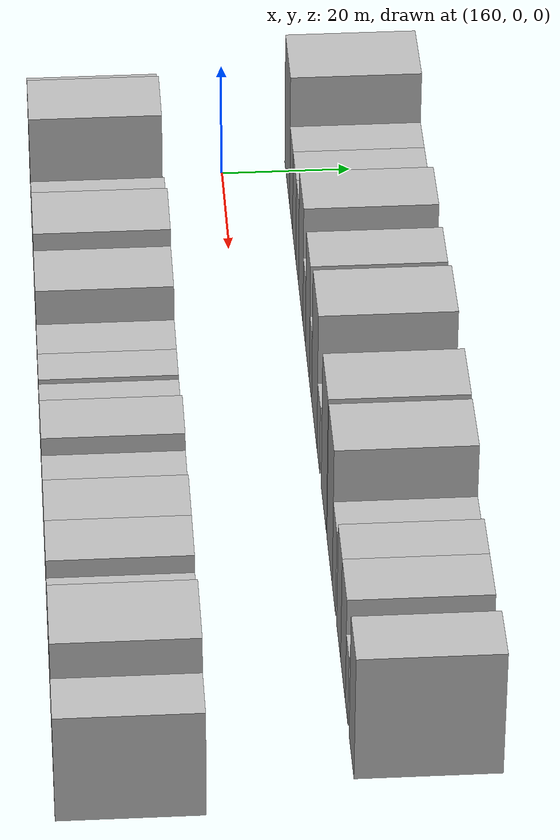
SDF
<sdf version="1.6">
 <world name="default">
  <model name="building_17">
   <static>1</static>
   <pose>163.5873 20.0000 0 0.000000 0.000000 1.570796</pose>
   <link name="link">
    <pose>0 0 12.00 0 0 0</pose>
    <collision name="collision"><geometry><box><size>20.0000 11.8232 24.0000</size></box></geometry></collision>
    <visual name="visual">
     <cast_shadows>0</cast_shadows>
     <geometry><box><size>20.0000 11.8232 24.0000</size></box></geometry>
     <material>
      <script>
       <uri>model://HANNAS_wall/materials/scripts</uri>
       <uri>model://HANNAS_wall/materials/textures</uri>
       <name>vrc/HANNAS_wall</name>
      </script>
     </material>
    </visual>
   </link>
  </model>
  <model name="building_18">
   <static>1</static>
   <pose>172.8582 20.0000 0 0.000000 0.000000 1.570796</pose>
   <link name="link">
    <pose>0 0 7.50 0 0 0</pose>
    <collision name="collision"><geometry><box><size>20.0000 6.7187 15.0000</size></box></geometry></collision>
    <visual name="visual">
     <cast_shadows>0</cast_shadows>
     <geometry><box><size>20.0000 6.7187 15.0000</size></box></geometry>
     <material>
      <script>
       <uri>model://HANNAS_wall/materials/scripts</uri>
       <uri>model://HANNAS_wall/materials/textures</uri>
       <name>vrc/HANNAS_wall</name>
      </script>
     </material>
    </visual>
   </link>
  </model>
  <model name="building_19">
   <static>1</static>
   <pose>179.9510 20.0000 0 0.000000 0.000000 1.570796</pose>
   <link name="link">
    <pose>0 0 7.50 0 0 0</pose>
    <collision name="collision"><geometry><box><size>20.0000 7.4668 15.0000</size></box></geometry></collision>
    <visual name="visual">
     <cast_shadows>0</cast_shadows>
     <geometry><box><size>20.0000 7.4668 15.0000</size></box></geometry>
     <material>
      <script>
       <uri>model://HANNAS_wall/materials/scripts</uri>
       <uri>model://HANNAS_wall/materials/textures</uri>
       <name>vrc/HANNAS_wall</name>
      </script>
     </material>
    </visual>
   </link>
  </model>
  <model name="building_20">
   <static>1</static>
   <pose>186.8059 20.0000 0 0.000000 0.000000 1.570796</pose>
   <link name="link">
    <pose>0 0 7.50 0 0 0</pose>
    <collision name="collision"><geometry><box><size>20.0000 6.2430 15.0000</size></box></geometry></collision>
    <visual name="visual">
     <cast_shadows>0</cast_shadows>
     <geometry><box><size>20.0000 6.2430 15.0000</size></box></geometry>
     <material>
      <script>
       <uri>model://HANNAS_wall/materials/scripts</uri>
       <uri>model://HANNAS_wall/materials/textures</uri>
       <name>vrc/HANNAS_wall</name>
      </script>
     </material>
    </visual>
   </link>
  </model>
  <model name="building_21">
   <static>1</static>
   <pose>194.7337 20.0000 0 0.000000 0.000000 1.570796</pose>
   <link name="link">
    <pose>0 0 10.50 0 0 0</pose>
    <collision name="collision"><geometry><box><size>20.0000 9.6127 21.0000</size></box></geometry></collision>
    <visual name="visual">
     <cast_shadows>0</cast_shadows>
     <geometry><box><size>20.0000 9.6127 21.0000</size></box></geometry>
     <material>
      <script>
       <uri>model://HANNAS_wall/materials/scripts</uri>
       <uri>model://HANNAS_wall/materials/textures</uri>
       <name>vrc/HANNAS_wall</name>
      </script>
     </material>
    </visual>
   </link>
  </model>
  <model name="building_22">
   <static>1</static>
   <pose>202.4195 20.0000 0 0.000000 0.000000 1.570796</pose>
   <link name="link">
    <pose>0 0 6.00 0 0 0</pose>
    <collision name="collision"><geometry><box><size>20.0000 5.7590 12.0000</size></box></geometry></collision>
    <visual name="visual">
     <cast_shadows>0</cast_shadows>
     <geometry><box><size>20.0000 5.7590 12.0000</size></box></geometry>
     <material>
      <script>
       <uri>model://HANNAS_wall/materials/scripts</uri>
       <uri>model://HANNAS_wall/materials/textures</uri>
       <name>vrc/HANNAS_wall</name>
      </script>
     </material>
    </visual>
   </link>
  </model>
  <model name="building_23">
   <static>1</static>
   <pose>209.6194 20.0000 0 0.000000 0.000000 1.570796</pose>
   <link name="link">
    <pose>0 0 10.50 0 0 0</pose>
    <collision name="collision"><geometry><box><size>20.0000 8.6408 21.0000</size></box></geometry></collision>
    <visual name="visual">
     <cast_shadows>0</cast_shadows>
     <geometry><box><size>20.0000 8.6408 21.0000</size></box></geometry>
     <material>
      <script>
       <uri>model://HANNAS_wall/materials/scripts</uri>
       <uri>model://HANNAS_wall/materials/textures</uri>
       <name>vrc/HANNAS_wall</name>
      </script>
     </material>
    </visual>
   </link>
  </model>
  <model name="building_24">
   <static>1</static>
   <pose>216.3838 20.0000 0 0.000000 0.000000 1.570796</pose>
   <link name="link">
    <pose>0 0 6.00 0 0 0</pose>
    <collision name="collision"><geometry><box><size>20.0000 4.8879 12.0000</size></box></geometry></collision>
    <visual name="visual">
     <cast_shadows>0</cast_shadows>
     <geometry><box><size>20.0000 4.8879 12.0000</size></box></geometry>
     <material>
      <script>
       <uri>model://HANNAS_wall/materials/scripts</uri>
       <uri>model://HANNAS_wall/materials/textures</uri>
       <name>vrc/HANNAS_wall</name>
      </script>
     </material>
    </visual>
   </link>
  </model>
  <model name="building_25">
   <static>1</static>
   <pose>224.3816 20.0000 0 0.000000 0.000000 1.570796</pose>
   <link name="link">
    <pose>0 0 12.00 0 0 0</pose>
    <collision name="collision"><geometry><box><size>20.0000 11.1077 24.0000</size></box></geometry></collision>
    <visual name="visual">
     <cast_shadows>0</cast_shadows>
     <geometry><box><size>20.0000 11.1077 24.0000</size></box></geometry>
     <material>
      <script>
       <uri>model://HANNAS_wall/materials/scripts</uri>
       <uri>model://HANNAS_wall/materials/textures</uri>
       <name>vrc/HANNAS_wall</name>
      </script>
     </material>
    </visual>
   </link>
  </model>
  <model name="building_26">
   <static>1</static>
   <pose>232.8020 20.0000 0 0.000000 0.000000 1.570796</pose>
   <link name="link">
    <pose>0 0 6.00 0 0 0</pose>
    <collision name="collision"><geometry><box><size>20.0000 5.7331 12.0000</size></box></geometry></collision>
    <visual name="visual">
     <cast_shadows>0</cast_shadows>
     <geometry><box><size>20.0000 5.7331 12.0000</size></box></geometry>
     <material>
      <script>
       <uri>model://HANNAS_wall/materials/scripts</uri>
       <uri>model://HANNAS_wall/materials/textures</uri>
       <name>vrc/HANNAS_wall</name>
      </script>
     </material>
    </visual>
   </link>
  </model>
  <model name="building_27">
   <static>1</static>
   <pose>243.9484 20.0000 0 0.000000 0.000000 1.570796</pose>
   <link name="link">
    <pose>0 0 12.00 0 0 0</pose>
    <collision name="collision"><geometry><box><size>20.0000 10.5597 24.0000</size></box></geometry></collision>
    <visual name="visual">
     <cast_shadows>0</cast_shadows>
     <geometry><box><size>20.0000 10.5597 24.0000</size></box></geometry>
     <material>
      <script>
       <uri>model://HANNAS_wall/materials/scripts</uri>
       <uri>model://HANNAS_wall/materials/textures</uri>
       <name>vrc/HANNAS_wall</name>
      </script>
     </material>
    </visual>
   </link>
  </model>
  <model name="building_28">
   <static>1</static>
   <pose>255.4477 20.0000 0 0.000000 0.000000 1.570796</pose>
   <link name="link">
    <pose>0 0 12.00 0 0 0</pose>
    <collision name="collision"><geometry><box><size>20.0000 10.4390 24.0000</size></box></geometry></collision>
    <visual name="visual">
     <cast_shadows>0</cast_shadows>
     <geometry><box><size>20.0000 10.4390 24.0000</size></box></geometry>
     <material>
      <script>
       <uri>model://HANNAS_wall/materials/scripts</uri>
       <uri>model://HANNAS_wall/materials/textures</uri>
       <name>vrc/HANNAS_wall</name>
      </script>
     </material>
    </visual>
   </link>
  </model>
  <model name="building_29">
   <static>1</static>
   <pose>263.9485 20.0000 0 0.000000 0.000000 1.570796</pose>
   <link name="link">
    <pose>0 0 7.50 0 0 0</pose>
    <collision name="collision"><geometry><box><size>20.0000 6.5625 15.0000</size></box></geometry></collision>
    <visual name="visual">
     <cast_shadows>0</cast_shadows>
     <geometry><box><size>20.0000 6.5625 15.0000</size></box></geometry>
     <material>
      <script>
       <uri>model://HANNAS_wall/materials/scripts</uri>
       <uri>model://HANNAS_wall/materials/textures</uri>
       <name>vrc/HANNAS_wall</name>
      </script>
     </material>
    </visual>
   </link>
  </model>
  <model name="building_30">
   <static>1</static>
   <pose>272.9415 20.0000 0 0.000000 0.000000 1.570796</pose>
   <link name="link">
    <pose>0 0 9.00 0 0 0</pose>
    <collision name="collision"><geometry><box><size>20.0000 7.4235 18.0000</size></box></geometry></collision>
    <visual name="visual">
     <cast_shadows>0</cast_shadows>
     <geometry><box><size>20.0000 7.4235 18.0000</size></box></geometry>
     <material>
      <script>
       <uri>model://HANNAS_wall/materials/scripts</uri>
       <uri>model://HANNAS_wall/materials/textures</uri>
       <name>vrc/HANNAS_wall</name>
      </script>
     </material>
    </visual>
   </link>
  </model>
  <model name="building_31">
   <static>1</static>
   <pose>280.9500 20.0000 0 0.000000 0.000000 1.570796</pose>
   <link name="link">
    <pose>0 0 9.00 0 0 0</pose>
    <collision name="collision"><geometry><box><size>20.0000 8.5936 18.0000</size></box></geometry></collision>
    <visual name="visual">
     <cast_shadows>0</cast_shadows>
     <geometry><box><size>20.0000 8.5936 18.0000</size></box></geometry>
     <material>
      <script>
       <uri>model://HANNAS_wall/materials/scripts</uri>
       <uri>model://HANNAS_wall/materials/textures</uri>
       <name>vrc/HANNAS_wall</name>
      </script>
     </material>
    </visual>
   </link>
  </model>
  <model name="building_32">
   <static>1</static>
   <pose>287.6605 20.0000 0 0.000000 0.000000 1.570796</pose>
   <link name="link">
    <pose>0 0 6.00 0 0 0</pose>
    <collision name="collision"><geometry><box><size>20.0000 4.8273 12.0000</size></box></geometry></collision>
    <visual name="visual">
     <cast_shadows>0</cast_shadows>
     <geometry><box><size>20.0000 4.8273 12.0000</size></box></geometry>
     <material>
      <script>
       <uri>model://HANNAS_wall/materials/scripts</uri>
       <uri>model://HANNAS_wall/materials/textures</uri>
       <name>vrc/HANNAS_wall</name>
      </script>
     </material>
    </visual>
   </link>
  </model>
  <model name="building_33">
   <static>1</static>
   <pose>296.4525 20.0000 0 0.000000 0.000000 1.570796</pose>
   <link name="link">
    <pose>0 0 10.50 0 0 0</pose>
    <collision name="collision"><geometry><box><size>20.0000 8.7567 21.0000</size></box></geometry></collision>
    <visual name="visual">
     <cast_shadows>0</cast_shadows>
     <geometry><box><size>20.0000 8.7567 21.0000</size></box></geometry>
     <material>
      <script>
       <uri>model://HANNAS_wall/materials/scripts</uri>
       <uri>model://HANNAS_wall/materials/textures</uri>
       <name>vrc/HANNAS_wall</name>
      </script>
     </material>
    </visual>
   </link>
  </model>
  <model name="building_49">
   <static>1</static>
   <pose>162.0936 -20.0000 0 0.000000 0.000000 1.570796</pose>
   <link name="link">
    <pose>0 0 9.00 0 0 0</pose>
    <collision name="collision"><geometry><box><size>20.0000 7.4808 18.0000</size></box></geometry></collision>
    <visual name="visual">
     <cast_shadows>0</cast_shadows>
     <geometry><box><size>20.0000 7.4808 18.0000</size></box></geometry>
     <material>
      <script>
       <uri>model://HANNAS_wall/materials/scripts</uri>
       <uri>model://HANNAS_wall/materials/textures</uri>
       <name>vrc/HANNAS_wall</name>
      </script>
     </material>
    </visual>
   </link>
  </model>
  <model name="building_50">
   <static>1</static>
   <pose>173.1123 -20.0000 0 0.000000 0.000000 1.570796</pose>
   <link name="link">
    <pose>0 0 12.00 0 0 0</pose>
    <collision name="collision"><geometry><box><size>20.0000 10.5565 24.0000</size></box></geometry></collision>
    <visual name="visual">
     <cast_shadows>0</cast_shadows>
     <geometry><box><size>20.0000 10.5565 24.0000</size></box></geometry>
     <material>
      <script>
       <uri>model://HANNAS_wall/materials/scripts</uri>
       <uri>model://HANNAS_wall/materials/textures</uri>
       <name>vrc/HANNAS_wall</name>
      </script>
     </material>
    </visual>
   </link>
  </model>
  <model name="building_51">
   <static>1</static>
   <pose>181.2041 -20.0000 0 0.000000 0.000000 1.570796</pose>
   <link name="link">
    <pose>0 0 6.00 0 0 0</pose>
    <collision name="collision"><geometry><box><size>20.0000 5.6272 12.0000</size></box></geometry></collision>
    <visual name="visual">
     <cast_shadows>0</cast_shadows>
     <geometry><box><size>20.0000 5.6272 12.0000</size></box></geometry>
     <material>
      <script>
       <uri>model://HANNAS_wall/materials/scripts</uri>
       <uri>model://HANNAS_wall/materials/textures</uri>
       <name>vrc/HANNAS_wall</name>
      </script>
     </material>
    </visual>
   </link>
  </model>
  <model name="building_52">
   <static>1</static>
   <pose>190.1414 -20.0000 0 0.000000 0.000000 1.570796</pose>
   <link name="link">
    <pose>0 0 9.00 0 0 0</pose>
    <collision name="collision"><geometry><box><size>20.0000 8.2473 18.0000</size></box></geometry></collision>
    <visual name="visual">
     <cast_shadows>0</cast_shadows>
     <geometry><box><size>20.0000 8.2473 18.0000</size></box></geometry>
     <material>
      <script>
       <uri>model://HANNAS_wall/materials/scripts</uri>
       <uri>model://HANNAS_wall/materials/textures</uri>
       <name>vrc/HANNAS_wall</name>
      </script>
     </material>
    </visual>
   </link>
  </model>
  <model name="building_53">
   <static>1</static>
   <pose>202.4718 -20.0000 0 0.000000 0.000000 1.570796</pose>
   <link name="link">
    <pose>0 0 12.00 0 0 0</pose>
    <collision name="collision"><geometry><box><size>20.0000 10.4137 24.0000</size></box></geometry></collision>
    <visual name="visual">
     <cast_shadows>0</cast_shadows>
     <geometry><box><size>20.0000 10.4137 24.0000</size></box></geometry>
     <material>
      <script>
       <uri>model://HANNAS_wall/materials/scripts</uri>
       <uri>model://HANNAS_wall/materials/textures</uri>
       <name>vrc/HANNAS_wall</name>
      </script>
     </material>
    </visual>
   </link>
  </model>
  <model name="building_54">
   <static>1</static>
   <pose>212.6439 -20.0000 0 0.000000 0.000000 1.570796</pose>
   <link name="link">
    <pose>0 0 10.50 0 0 0</pose>
    <collision name="collision"><geometry><box><size>20.0000 9.9305 21.0000</size></box></geometry></collision>
    <visual name="visual">
     <cast_shadows>0</cast_shadows>
     <geometry><box><size>20.0000 9.9305 21.0000</size></box></geometry>
     <material>
      <script>
       <uri>model://HANNAS_wall/materials/scripts</uri>
       <uri>model://HANNAS_wall/materials/textures</uri>
       <name>vrc/HANNAS_wall</name>
      </script>
     </material>
    </visual>
   </link>
  </model>
  <model name="building_55">
   <static>1</static>
   <pose>221.1147 -20.0000 0 0.000000 0.000000 1.570796</pose>
   <link name="link">
    <pose>0 0 7.50 0 0 0</pose>
    <collision name="collision"><geometry><box><size>20.0000 7.0110 15.0000</size></box></geometry></collision>
    <visual name="visual">
     <cast_shadows>0</cast_shadows>
     <geometry><box><size>20.0000 7.0110 15.0000</size></box></geometry>
     <material>
      <script>
       <uri>model://HANNAS_wall/materials/scripts</uri>
       <uri>model://HANNAS_wall/materials/textures</uri>
       <name>vrc/HANNAS_wall</name>
      </script>
     </material>
    </visual>
   </link>
  </model>
  <model name="building_56">
   <static>1</static>
   <pose>227.6785 -20.0000 0 0.000000 0.000000 1.570796</pose>
   <link name="link">
    <pose>0 0 7.50 0 0 0</pose>
    <collision name="collision"><geometry><box><size>20.0000 6.1165 15.0000</size></box></geometry></collision>
    <visual name="visual">
     <cast_shadows>0</cast_shadows>
     <geometry><box><size>20.0000 6.1165 15.0000</size></box></geometry>
     <material>
      <script>
       <uri>model://HANNAS_wall/materials/scripts</uri>
       <uri>model://HANNAS_wall/materials/textures</uri>
       <name>vrc/HANNAS_wall</name>
      </script>
     </material>
    </visual>
   </link>
  </model>
  <model name="building_57">
   <static>1</static>
   <pose>234.7398 -20.0000 0 0.000000 0.000000 1.570796</pose>
   <link name="link">
    <pose>0 0 7.50 0 0 0</pose>
    <collision name="collision"><geometry><box><size>20.0000 6.0059 15.0000</size></box></geometry></collision>
    <visual name="visual">
     <cast_shadows>0</cast_shadows>
     <geometry><box><size>20.0000 6.0059 15.0000</size></box></geometry>
     <material>
      <script>
       <uri>model://HANNAS_wall/materials/scripts</uri>
       <uri>model://HANNAS_wall/materials/textures</uri>
       <name>vrc/HANNAS_wall</name>
      </script>
     </material>
    </visual>
   </link>
  </model>
  <model name="building_58">
   <static>1</static>
   <pose>240.4771 -20.0000 0 0.000000 0.000000 1.570796</pose>
   <link name="link">
    <pose>0 0 6.00 0 0 0</pose>
    <collision name="collision"><geometry><box><size>20.0000 5.4688 12.0000</size></box></geometry></collision>
    <visual name="visual">
     <cast_shadows>0</cast_shadows>
     <geometry><box><size>20.0000 5.4688 12.0000</size></box></geometry>
     <material>
      <script>
       <uri>model://HANNAS_wall/materials/scripts</uri>
       <uri>model://HANNAS_wall/materials/textures</uri>
       <name>vrc/HANNAS_wall</name>
      </script>
     </material>
    </visual>
   </link>
  </model>
  <model name="building_59">
   <static>1</static>
   <pose>247.5259 -20.0000 0 0.000000 0.000000 1.570796</pose>
   <link name="link">
    <pose>0 0 10.50 0 0 0</pose>
    <collision name="collision"><geometry><box><size>20.0000 8.6287 21.0000</size></box></geometry></collision>
    <visual name="visual">
     <cast_shadows>0</cast_shadows>
     <geometry><box><size>20.0000 8.6287 21.0000</size></box></geometry>
     <material>
      <script>
       <uri>model://HANNAS_wall/materials/scripts</uri>
       <uri>model://HANNAS_wall/materials/textures</uri>
       <name>vrc/HANNAS_wall</name>
      </script>
     </material>
    </visual>
   </link>
  </model>
  <model name="building_60">
   <static>1</static>
   <pose>255.9013 -20.0000 0 0.000000 0.000000 1.570796</pose>
   <link name="link">
    <pose>0 0 9.00 0 0 0</pose>
    <collision name="collision"><geometry><box><size>20.0000 8.1222 18.0000</size></box></geometry></collision>
    <visual name="visual">
     <cast_shadows>0</cast_shadows>
     <geometry><box><size>20.0000 8.1222 18.0000</size></box></geometry>
     <material>
      <script>
       <uri>model://HANNAS_wall/materials/scripts</uri>
       <uri>model://HANNAS_wall/materials/textures</uri>
       <name>vrc/HANNAS_wall</name>
      </script>
     </material>
    </visual>
   </link>
  </model>
  <model name="building_61">
   <static>1</static>
   <pose>265.3456 -20.0000 0 0.000000 0.000000 1.570796</pose>
   <link name="link">
    <pose>0 0 10.50 0 0 0</pose>
    <collision name="collision"><geometry><box><size>20.0000 8.7663 21.0000</size></box></geometry></collision>
    <visual name="visual">
     <cast_shadows>0</cast_shadows>
     <geometry><box><size>20.0000 8.7663 21.0000</size></box></geometry>
     <material>
      <script>
       <uri>model://HANNAS_wall/materials/scripts</uri>
       <uri>model://HANNAS_wall/materials/textures</uri>
       <name>vrc/HANNAS_wall</name>
      </script>
     </material>
    </visual>
   </link>
  </model>
  <model name="building_62">
   <static>1</static>
   <pose>274.0069 -20.0000 0 0.000000 0.000000 1.570796</pose>
   <link name="link">
    <pose>0 0 10.50 0 0 0</pose>
    <collision name="collision"><geometry><box><size>20.0000 8.5563 21.0000</size></box></geometry></collision>
    <visual name="visual">
     <cast_shadows>0</cast_shadows>
     <geometry><box><size>20.0000 8.5563 21.0000</size></box></geometry>
     <material>
      <script>
       <uri>model://HANNAS_wall/materials/scripts</uri>
       <uri>model://HANNAS_wall/materials/textures</uri>
       <name>vrc/HANNAS_wall</name>
      </script>
     </material>
    </visual>
   </link>
  </model>
  <model name="building_63">
   <static>1</static>
   <pose>282.5811 -20.0000 0 0.000000 0.000000 1.570796</pose>
   <link name="link">
    <pose>0 0 9.00 0 0 0</pose>
    <collision name="collision"><geometry><box><size>20.0000 8.5922 18.0000</size></box></geometry></collision>
    <visual name="visual">
     <cast_shadows>0</cast_shadows>
     <geometry><box><size>20.0000 8.5922 18.0000</size></box></geometry>
     <material>
      <script>
       <uri>model://HANNAS_wall/materials/scripts</uri>
       <uri>model://HANNAS_wall/materials/textures</uri>
       <name>vrc/HANNAS_wall</name>
      </script>
     </material>
    </visual>
   </link>
  </model>
  <model name="building_64">
   <static>1</static>
   <pose>292.8363 -20.0000 0 0.000000 0.000000 1.570796</pose>
   <link name="link">
    <pose>0 0 12.00 0 0 0</pose>
    <collision name="collision"><geometry><box><size>20.0000 11.9181 24.0000</size></box></geometry></collision>
    <visual name="visual">
     <cast_shadows>0</cast_shadows>
     <geometry><box><size>20.0000 11.9181 24.0000</size></box></geometry>
     <material>
      <script>
       <uri>model://HANNAS_wall/materials/scripts</uri>
       <uri>model://HANNAS_wall/materials/textures</uri>
       <name>vrc/HANNAS_wall</name>
      </script>
     </material>
    </visual>
   </link>
  </model>
  <model name="building_65">
   <static>1</static>
   <pose>302.7692 -20.0000 0 0.000000 0.000000 1.570796</pose>
   <link name="link">
    <pose>0 0 9.00 0 0 0</pose>
    <collision name="collision"><geometry><box><size>20.0000 7.9476 18.0000</size></box></geometry></collision>
    <visual name="visual">
     <cast_shadows>0</cast_shadows>
     <geometry><box><size>20.0000 7.9476 18.0000</size></box></geometry>
     <material>
      <script>
       <uri>model://HANNAS_wall/materials/scripts</uri>
       <uri>model://HANNAS_wall/materials/textures</uri>
       <name>vrc/HANNAS_wall</name>
      </script>
     </material>
    </visual>
   </link>
  </model>
 </world>
</sdf>
